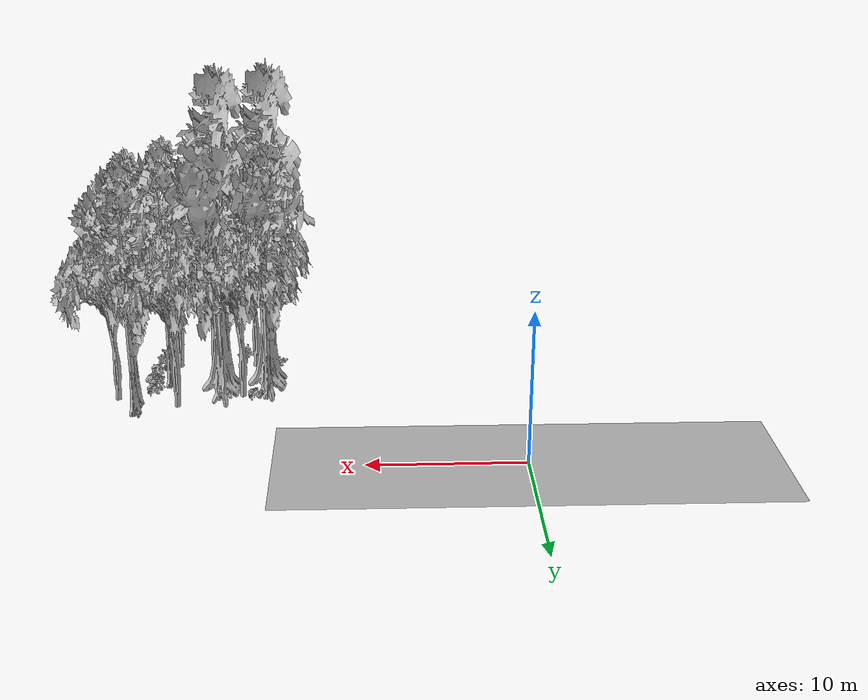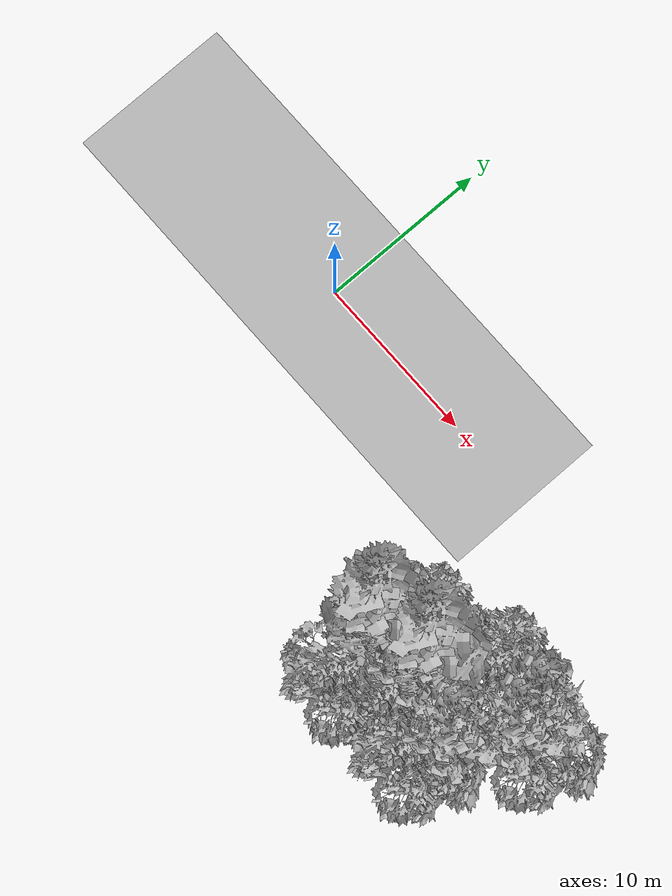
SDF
<sdf version="1.7">
 <world name="default">
  <model name="ground_plane">
   <static>1</static>
   <link name="link">
    <collision name="collision">
     <geometry><plane><normal>0 0 1</normal><size>100 100</size></plane></geometry>
     <surface><contact><ode><min_depth>0.01</min_depth><max_vel>0</max_vel></ode></contact></surface>
    </collision>
    <visual name="grass">
     <cast_shadows>0</cast_shadows>
     <geometry>
      <mesh>
       <scale>0.5814285714285714 0.18142857142857144 0.1</scale>
       <uri>file://grass_plane/meshes/grass_plane.dae</uri>
      </mesh>
     </geometry>
    </visual>
   </link>
  </model>
  <model name="Tree 18">
   <static>1</static>
   <pose>18.123560382419868 -9.57268278466848 0 1.57079 -0 0</pose>
   <link name="link">
    <collision name="collision">
     <geometry><mesh><scale>3.5 5 3.5</scale><uri>model://tree_2/meshes/tree_2.obj</uri></mesh></geometry>
    </collision>
    <visual name="visual">
     <geometry><mesh><scale>3.5 5 3.5</scale><uri>model://tree_2/meshes/tree_2.obj</uri></mesh></geometry>
    </visual>
   </link>
  </model>
  <model name="Tree 28">
   <static>1</static>
   <pose>20.364230537026543 -12.95609726575488 0 1.57079 -0 0</pose>
   <link name="link">
    <collision name="collision">
     <geometry><mesh><scale>3.5 5 3.5</scale><uri>model://tree_2/meshes/tree_2.obj</uri></mesh></geometry>
    </collision>
    <visual name="visual">
     <geometry><mesh><scale>3.5 5 3.5</scale><uri>model://tree_2/meshes/tree_2.obj</uri></mesh></geometry>
    </visual>
   </link>
  </model>
  <model name="Tree 53">
   <static>1</static>
   <pose>17.615608959535294 -14.288774618522813 0 1.57079 -0 0</pose>
   <link name="link">
    <collision name="collision">
     <geometry><mesh><scale>3.5 5 3.5</scale><uri>model://tree_2/meshes/tree_2.obj</uri></mesh></geometry>
    </collision>
    <visual name="visual">
     <geometry><mesh><scale>3.5 5 3.5</scale><uri>model://tree_2/meshes/tree_2.obj</uri></mesh></geometry>
    </visual>
   </link>
  </model>
  <model name="Tree 156">
   <static>1</static>
   <pose>25.301635310980615 -8.168767489746255 0 1.57079 -0 0</pose>
   <link name="link">
    <collision name="collision">
     <geometry><mesh><scale>3.5 5 3.5</scale><uri>model://tree_9/meshes/tree_9.obj</uri></mesh></geometry>
    </collision>
    <visual name="visual">
     <geometry><mesh><scale>3.5 5 3.5</scale><uri>model://tree_9/meshes/tree_9.obj</uri></mesh></geometry>
    </visual>
   </link>
  </model>
  <model name="Tree 166">
   <static>1</static>
   <pose>22.351363945282102 -8.189231440734634 0 1.57079 -0 0</pose>
   <link name="link">
    <collision name="collision">
     <geometry><mesh><scale>3.5 5 3.5</scale><uri>model://tree_2/meshes/tree_2.obj</uri></mesh></geometry>
    </collision>
    <visual name="visual">
     <geometry><mesh><scale>3.5 5 3.5</scale><uri>model://tree_2/meshes/tree_2.obj</uri></mesh></geometry>
    </visual>
   </link>
  </model>
  <model name="Tree 169">
   <static>1</static>
   <pose>25.359547404558825 -9.534617295935181 0 1.57079 -0 0</pose>
   <link name="link">
    <collision name="collision">
     <geometry><mesh><scale>3.5 5 3.5</scale><uri>model://tree_9/meshes/tree_9.obj</uri></mesh></geometry>
    </collision>
    <visual name="visual">
     <geometry><mesh><scale>3.5 5 3.5</scale><uri>model://tree_9/meshes/tree_9.obj</uri></mesh></geometry>
    </visual>
   </link>
  </model>
  <model name="Tree 207">
   <static>1</static>
   <pose>23.456366611515406 -12.336917076406198 0 1.57079 -0 0</pose>
   <link name="link">
    <collision name="collision">
     <geometry><mesh><scale>3.5 5 3.5</scale><uri>model://tree_9/meshes/tree_9.obj</uri></mesh></geometry>
    </collision>
    <visual name="visual">
     <geometry><mesh><scale>3.5 5 3.5</scale><uri>model://tree_9/meshes/tree_9.obj</uri></mesh></geometry>
    </visual>
   </link>
  </model>
  <model name="Tree 228">
   <static>1</static>
   <pose>16.526169190174812 -11.307529448671492 0 1.57079 -0 0</pose>
   <link name="link">
    <collision name="collision">
     <geometry><mesh><scale>3.5 5 3.5</scale><uri>model://tree_4/meshes/tree_4.obj</uri></mesh></geometry>
    </collision>
    <visual name="visual">
     <geometry><mesh><scale>3.5 5 3.5</scale><uri>model://tree_4/meshes/tree_4.obj</uri></mesh></geometry>
    </visual>
   </link>
  </model>
  <model name="Tree 244">
   <static>1</static>
   <pose>22.944062811185162 -14.304006564679014 0 1.57079 -0 0</pose>
   <link name="link">
    <collision name="collision">
     <geometry><mesh><scale>3.5 5 3.5</scale><uri>model://tree_2/meshes/tree_2.obj</uri></mesh></geometry>
    </collision>
    <visual name="visual">
     <geometry><mesh><scale>3.5 5 3.5</scale><uri>model://tree_2/meshes/tree_2.obj</uri></mesh></geometry>
    </visual>
   </link>
  </model>
  <model name="Tree 323">
   <static>1</static>
   <pose>19.584163735116277 -10.554879233896965 0 1.57079 -0 0</pose>
   <link name="link">
    <collision name="collision">
     <geometry><mesh><scale>3.5 5 3.5</scale><uri>model://tree_4/meshes/tree_4.obj</uri></mesh></geometry>
    </collision>
    <visual name="visual">
     <geometry><mesh><scale>3.5 5 3.5</scale><uri>model://tree_4/meshes/tree_4.obj</uri></mesh></geometry>
    </visual>
   </link>
  </model>
  <model name="Tree 347">
   <static>1</static>
   <pose>19.647505794631513 -11.346760277260138 0 1.57079 -0 0</pose>
   <link name="link">
    <collision name="collision">
     <geometry><mesh><scale>3.5 5 3.5</scale><uri>model://tree_9/meshes/tree_9.obj</uri></mesh></geometry>
    </collision>
    <visual name="visual">
     <geometry><mesh><scale>3.5 5 3.5</scale><uri>model://tree_9/meshes/tree_9.obj</uri></mesh></geometry>
    </visual>
   </link>
  </model>
  <model name="Tree 409">
   <static>1</static>
   <pose>26.461417476395454 -9.331367159341237 0 1.57079 -0 0</pose>
   <link name="link">
    <collision name="collision">
     <geometry><mesh><scale>3.5 5 3.5</scale><uri>model://tree_2/meshes/tree_2.obj</uri></mesh></geometry>
    </collision>
    <visual name="visual">
     <geometry><mesh><scale>3.5 5 3.5</scale><uri>model://tree_2/meshes/tree_2.obj</uri></mesh></geometry>
    </visual>
   </link>
  </model>
  <model name="Tree 422">
   <static>1</static>
   <pose>16.585067938877103 -10.436143104487593 0 1.57079 -0 0</pose>
   <link name="link">
    <collision name="collision">
     <geometry><mesh><scale>3.5 5 3.5</scale><uri>model://tree_9/meshes/tree_9.obj</uri></mesh></geometry>
    </collision>
    <visual name="visual">
     <geometry><mesh><scale>3.5 5 3.5</scale><uri>model://tree_9/meshes/tree_9.obj</uri></mesh></geometry>
    </visual>
   </link>
  </model>
  <model name="Bush 16">
   <static>1</static>
   <pose>24.488303531828606 -11.14729689534056 0 1.57079 -0 0</pose>
   <link name="link">
    <collision name="collision">
     <geometry><mesh><scale>2 2 2</scale><uri>model://bush_3/meshes/bush_3.obj</uri></mesh></geometry>
     <surface><contact><collide_without_contact>false</collide_without_contact></contact></surface>
    </collision>
    <visual name="visual">
     <geometry><mesh><scale>2 2 2</scale><uri>model://bush_3/meshes/bush_3.obj</uri></mesh></geometry>
    </visual>
   </link>
  </model>
  <model name="Bush 27">
   <static>1</static>
   <pose>19.330238697304026 -9.8271835466608 0 1.57079 -0 0</pose>
   <link name="link">
    <collision name="collision">
     <geometry><mesh><scale>2 2 2</scale><uri>model://bush_2/meshes/bush_2.obj</uri></mesh></geometry>
     <surface><contact><collide_without_contact>false</collide_without_contact></contact></surface>
    </collision>
    <visual name="visual">
     <geometry><mesh><scale>2 2 2</scale><uri>model://bush_2/meshes/bush_2.obj</uri></mesh></geometry>
    </visual>
   </link>
  </model>
  <model name="Bush 95">
   <static>1</static>
   <pose>24.499276802210474 -13.779192813136534 0 1.57079 -0 0</pose>
   <link name="link">
    <collision name="collision">
     <geometry><mesh><scale>2 2 2</scale><uri>model://bush_2/meshes/bush_2.obj</uri></mesh></geometry>
     <surface><contact><collide_without_contact>false</collide_without_contact></contact></surface>
    </collision>
    <visual name="visual">
     <geometry><mesh><scale>2 2 2</scale><uri>model://bush_2/meshes/bush_2.obj</uri></mesh></geometry>
    </visual>
   </link>
  </model>
  <model name="Bush 137">
   <static>1</static>
   <pose>17.368219194608614 -9.77095624808689 0 1.57079 -0 0</pose>
   <link name="link">
    <collision name="collision">
     <geometry><mesh><scale>2 2 2</scale><uri>model://bush_2/meshes/bush_2.obj</uri></mesh></geometry>
     <surface><contact><collide_without_contact>false</collide_without_contact></contact></surface>
    </collision>
    <visual name="visual">
     <geometry><mesh><scale>2 2 2</scale><uri>model://bush_2/meshes/bush_2.obj</uri></mesh></geometry>
    </visual>
   </link>
  </model>
  <model name="Bush 236">
   <static>1</static>
   <pose>24.42021093735849 -11.313433558037236 0 1.57079 -0 0</pose>
   <link name="link">
    <collision name="collision">
     <geometry><mesh><scale>2 2 2</scale><uri>model://bush_3/meshes/bush_3.obj</uri></mesh></geometry>
     <surface><contact><collide_without_contact>false</collide_without_contact></contact></surface>
    </collision>
    <visual name="visual">
     <geometry><mesh><scale>2 2 2</scale><uri>model://bush_3/meshes/bush_3.obj</uri></mesh></geometry>
    </visual>
   </link>
  </model>
  <model name="Bush 247">
   <static>1</static>
   <pose>24.307949216142518 -10.612217977189857 0 1.57079 -0 0</pose>
   <link name="link">
    <collision name="collision">
     <geometry><mesh><scale>2 2 2</scale><uri>model://bush_2/meshes/bush_2.obj</uri></mesh></geometry>
     <surface><contact><collide_without_contact>false</collide_without_contact></contact></surface>
    </collision>
    <visual name="visual">
     <geometry><mesh><scale>2 2 2</scale><uri>model://bush_2/meshes/bush_2.obj</uri></mesh></geometry>
    </visual>
   </link>
  </model>
  <model name="Bush 303">
   <static>1</static>
   <pose>18.431937520972085 -13.820108674700759 0 1.57079 -0 0</pose>
   <link name="link">
    <collision name="collision">
     <geometry><mesh><scale>2 2 2</scale><uri>model://bush_5/meshes/bush_5.obj</uri></mesh></geometry>
     <surface><contact><collide_without_contact>false</collide_without_contact></contact></surface>
    </collision>
    <visual name="visual">
     <geometry><mesh><scale>2 2 2</scale><uri>model://bush_5/meshes/bush_5.obj</uri></mesh></geometry>
    </visual>
   </link>
  </model>
  <model name="Bush 313">
   <static>1</static>
   <pose>24.000247355356407 -13.532632082850423 0 1.57079 -0 0</pose>
   <link name="link">
    <collision name="collision">
     <geometry><mesh><scale>2 2 2</scale><uri>model://bush_5/meshes/bush_5.obj</uri></mesh></geometry>
     <surface><contact><collide_without_contact>false</collide_without_contact></contact></surface>
    </collision>
    <visual name="visual">
     <geometry><mesh><scale>2 2 2</scale><uri>model://bush_5/meshes/bush_5.obj</uri></mesh></geometry>
    </visual>
   </link>
  </model>
  <model name="Bush 331">
   <static>1</static>
   <pose>16.17656082195485 -14.76185689387821 0 1.57079 -0 0</pose>
   <link name="link">
    <collision name="collision">
     <geometry><mesh><scale>2 2 2</scale><uri>model://bush_2/meshes/bush_2.obj</uri></mesh></geometry>
     <surface><contact><collide_without_contact>false</collide_without_contact></contact></surface>
    </collision>
    <visual name="visual">
     <geometry><mesh><scale>2 2 2</scale><uri>model://bush_2/meshes/bush_2.obj</uri></mesh></geometry>
    </visual>
   </link>
  </model>
 </world>
</sdf>
